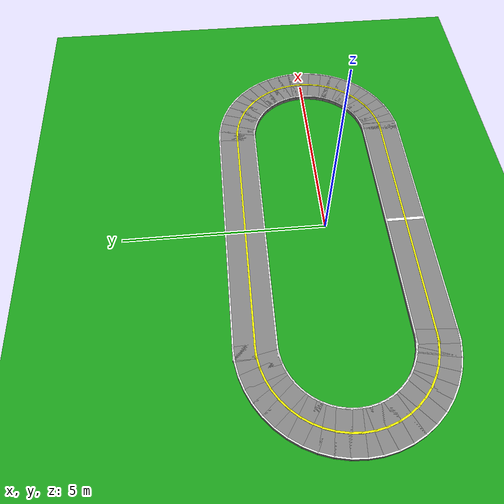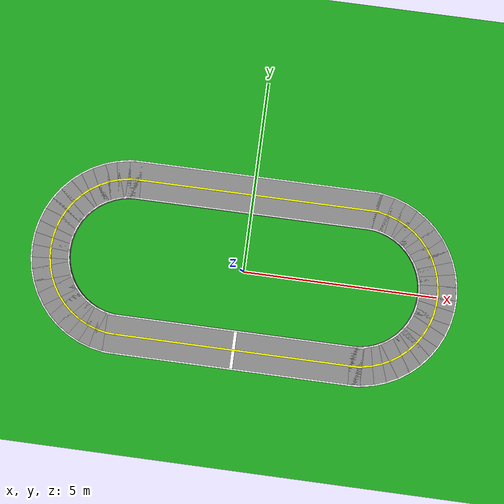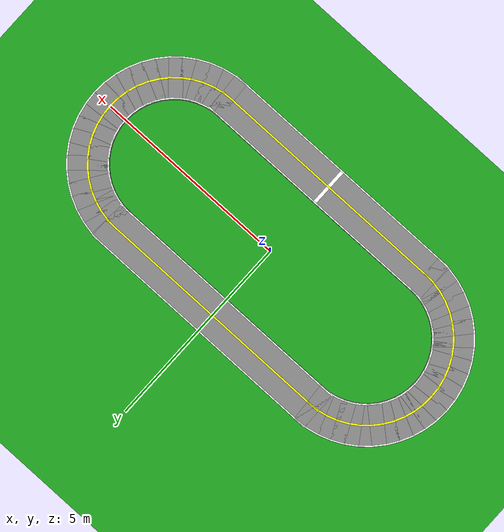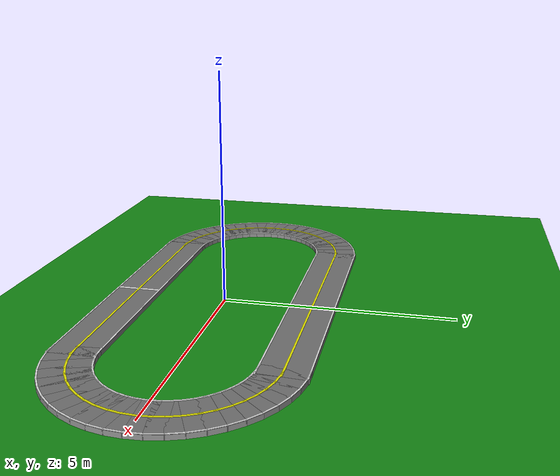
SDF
<?xml version="1.0"?>
<sdf version="1.8">
  <world name="track_world">
    <physics type="ode">
      <real_time_update_rate>1000.0</real_time_update_rate>
      <max_step_size>0.001</max_step_size>
      <real_time_factor>1</real_time_factor>
      <ode>
        <solver>
          <type>quick</type>
          <iters>150</iters>
          <precon_iters>0</precon_iters>
          <sor>1.400000</sor>
          <use_dynamic_moi_rescaling>1</use_dynamic_moi_rescaling>
        </solver>
        <constraints>
          <cfm>0.00001</cfm>
          <erp>0.2</erp>
          <contact_max_correcting_vel>2000.000000</contact_max_correcting_vel>
          <contact_surface_layer>0.01000</contact_surface_layer>
        </constraints>
      </ode>
    </physics>

    <plugin filename="gz-sim-physics-system" name="gz::sim::systems::Physics"/>
    <plugin filename="gz-sim-user-commands-system" name="gz::sim::systems::UserCommands"/>
    <plugin filename="gz-sim-scene-broadcaster-system" name="gz::sim::systems::SceneBroadcaster"/>
    <plugin filename="gz-sim-sensors-system" name="gz::sim::systems::Sensors">
      <render_engine>ogre2</render_engine>
    </plugin>
    <plugin filename="gz-sim-imu-system" name="gz::sim::systems::Imu"/>

    <!-- Sun -->
    <include>
      <uri>https://fuel.gazebosim.org/1.0/OpenRobotics/models/Sun</uri>
    </include>

    <!-- Green grass ground (replaces Ground Plane) -->
    <model name="grass_ground">
      <static>true</static>
      <link name="ground">
        <collision name="ground_collision">
          <geometry>
            <plane>
              <normal>0 0 1</normal>
              <size>100 100</size>
            </plane>
          </geometry>
        </collision>
        <visual name="ground_visual">
          <geometry>
            <plane>
              <normal>0 0 1</normal>
              <size>100 100</size>
            </plane>
          </geometry>
          <material>
            <ambient>0.1 0.5 0.1 1</ambient>
            <diffuse>0.1 0.6 0.1 1</diffuse>
            <specular>0.01 0.01 0.01 1</specular>
          </material>
        </visual>
      </link>
    </model>

    <!-- Oval race track -->
    <include>
      <uri>model://oval_track</uri>
      <pose>0 0 0 0 0 0</pose>
    </include>
  </world>
</sdf>

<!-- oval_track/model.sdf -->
<sdf version="1.8">
  <model name="oval_track">
    <static>true</static>
    <link name="track_surface">
      <collision name="straight_bottom_c"><pose>0 -2.0 0.05 0 0 0</pose><geometry><box><size>6.6 1.0 0.1</size></box></geometry></collision>
      <visual name="straight_bottom_v"><pose>0 -2.0 0.05 0 0 0</pose><geometry><box><size>6.6 1.0 0.1</size></box></geometry>
        <material><ambient>0.5 0.5 0.5 1</ambient><diffuse>0.5 0.5 0.5 1</diffuse></material>
      </visual>
      <collision name="straight_top_c"><pose>0 2.0 0.05 0 0 0</pose><geometry><box><size>6.6 1.0 0.1</size></box></geometry></collision>
      <visual name="straight_top_v"><pose>0 2.0 0.05 0 0 0</pose><geometry><box><size>6.6 1.0 0.1</size></box></geometry>
        <material><ambient>0.5 0.5 0.5 1</ambient><diffuse>0.5 0.5 0.5 1</diffuse></material>
      </visual>
      <collision name="c_r00_c"><pose>3.1308 -1.9957 0.05 0 0 0.0654</pose><geometry><box><size>0.3416 1.0 0.1</size></box></geometry></collision>
      <visual name="c_r00_v"><pose>3.1308 -1.9957 0.05 0 0 0.0654</pose><geometry><box><size>0.3416 1.0 0.1</size></box></geometry>
        <material><ambient>0.5 0.5 0.5 1</ambient><diffuse>0.5 0.5 0.5 1</diffuse></material>
      </visual>
      <collision name="c_r01_c"><pose>3.3902 -1.9616 0.05 0 0 0.1963</pose><geometry><box><size>0.3416 1.0 0.1</size></box></geometry></collision>
      <visual name="c_r01_v"><pose>3.3902 -1.9616 0.05 0 0 0.1963</pose><geometry><box><size>0.3416 1.0 0.1</size></box></geometry>
        <material><ambient>0.5 0.5 0.5 1</ambient><diffuse>0.5 0.5 0.5 1</diffuse></material>
      </visual>
      <collision name="c_r02_c"><pose>3.6429 -1.8939 0.05 0 0 0.3272</pose><geometry><box><size>0.3416 1.0 0.1</size></box></geometry></collision>
      <visual name="c_r02_v"><pose>3.6429 -1.8939 0.05 0 0 0.3272</pose><geometry><box><size>0.3416 1.0 0.1</size></box></geometry>
        <material><ambient>0.5 0.5 0.5 1</ambient><diffuse>0.5 0.5 0.5 1</diffuse></material>
      </visual>
      <collision name="c_r03_c"><pose>3.8846 -1.7937 0.05 0 0 0.4581</pose><geometry><box><size>0.3416 1.0 0.1</size></box></geometry></collision>
      <visual name="c_r03_v"><pose>3.8846 -1.7937 0.05 0 0 0.4581</pose><geometry><box><size>0.3416 1.0 0.1</size></box></geometry>
        <material><ambient>0.5 0.5 0.5 1</ambient><diffuse>0.5 0.5 0.5 1</diffuse></material>
      </visual>
      <collision name="c_r04_c"><pose>4.1111 -1.6629 0.05 0 0 0.5890</pose><geometry><box><size>0.3416 1.0 0.1</size></box></geometry></collision>
      <visual name="c_r04_v"><pose>4.1111 -1.6629 0.05 0 0 0.5890</pose><geometry><box><size>0.3416 1.0 0.1</size></box></geometry>
        <material><ambient>0.5 0.5 0.5 1</ambient><diffuse>0.5 0.5 0.5 1</diffuse></material>
      </visual>
      <collision name="c_r05_c"><pose>4.3187 -1.5037 0.05 0 0 0.7199</pose><geometry><box><size>0.3416 1.0 0.1</size></box></geometry></collision>
      <visual name="c_r05_v"><pose>4.3187 -1.5037 0.05 0 0 0.7199</pose><geometry><box><size>0.3416 1.0 0.1</size></box></geometry>
        <material><ambient>0.5 0.5 0.5 1</ambient><diffuse>0.5 0.5 0.5 1</diffuse></material>
      </visual>
      <collision name="c_r06_c"><pose>4.5037 -1.3187 0.05 0 0 0.8508</pose><geometry><box><size>0.3416 1.0 0.1</size></box></geometry></collision>
      <visual name="c_r06_v"><pose>4.5037 -1.3187 0.05 0 0 0.8508</pose><geometry><box><size>0.3416 1.0 0.1</size></box></geometry>
        <material><ambient>0.5 0.5 0.5 1</ambient><diffuse>0.5 0.5 0.5 1</diffuse></material>
      </visual>
      <collision name="c_r07_c"><pose>4.6629 -1.1111 0.05 0 0 0.9817</pose><geometry><box><size>0.3416 1.0 0.1</size></box></geometry></collision>
      <visual name="c_r07_v"><pose>4.6629 -1.1111 0.05 0 0 0.9817</pose><geometry><box><size>0.3416 1.0 0.1</size></box></geometry>
        <material><ambient>0.5 0.5 0.5 1</ambient><diffuse>0.5 0.5 0.5 1</diffuse></material>
      </visual>
      <collision name="c_r08_c"><pose>4.7937 -0.8846 0.05 0 0 1.1126</pose><geometry><box><size>0.3416 1.0 0.1</size></box></geometry></collision>
      <visual name="c_r08_v"><pose>4.7937 -0.8846 0.05 0 0 1.1126</pose><geometry><box><size>0.3416 1.0 0.1</size></box></geometry>
        <material><ambient>0.5 0.5 0.5 1</ambient><diffuse>0.5 0.5 0.5 1</diffuse></material>
      </visual>
      <collision name="c_r09_c"><pose>4.8939 -0.6429 0.05 0 0 1.2435</pose><geometry><box><size>0.3416 1.0 0.1</size></box></geometry></collision>
      <visual name="c_r09_v"><pose>4.8939 -0.6429 0.05 0 0 1.2435</pose><geometry><box><size>0.3416 1.0 0.1</size></box></geometry>
        <material><ambient>0.5 0.5 0.5 1</ambient><diffuse>0.5 0.5 0.5 1</diffuse></material>
      </visual>
      <collision name="c_r10_c"><pose>4.9616 -0.3902 0.05 0 0 1.3744</pose><geometry><box><size>0.3416 1.0 0.1</size></box></geometry></collision>
      <visual name="c_r10_v"><pose>4.9616 -0.3902 0.05 0 0 1.3744</pose><geometry><box><size>0.3416 1.0 0.1</size></box></geometry>
        <material><ambient>0.5 0.5 0.5 1</ambient><diffuse>0.5 0.5 0.5 1</diffuse></material>
      </visual>
      <collision name="c_r11_c"><pose>4.9957 -0.1308 0.05 0 0 1.5053</pose><geometry><box><size>0.3416 1.0 0.1</size></box></geometry></collision>
      <visual name="c_r11_v"><pose>4.9957 -0.1308 0.05 0 0 1.5053</pose><geometry><box><size>0.3416 1.0 0.1</size></box></geometry>
        <material><ambient>0.5 0.5 0.5 1</ambient><diffuse>0.5 0.5 0.5 1</diffuse></material>
      </visual>
      <collision name="c_r12_c"><pose>4.9957 0.1308 0.05 0 0 1.6362</pose><geometry><box><size>0.3416 1.0 0.1</size></box></geometry></collision>
      <visual name="c_r12_v"><pose>4.9957 0.1308 0.05 0 0 1.6362</pose><geometry><box><size>0.3416 1.0 0.1</size></box></geometry>
        <material><ambient>0.5 0.5 0.5 1</ambient><diffuse>0.5 0.5 0.5 1</diffuse></material>
      </visual>
      <collision name="c_r13_c"><pose>4.9616 0.3902 0.05 0 0 1.7671</pose><geometry><box><size>0.3416 1.0 0.1</size></box></geometry></collision>
      <visual name="c_r13_v"><pose>4.9616 0.3902 0.05 0 0 1.7671</pose><geometry><box><size>0.3416 1.0 0.1</size></box></geometry>
        <material><ambient>0.5 0.5 0.5 1</ambient><diffuse>0.5 0.5 0.5 1</diffuse></material>
      </visual>
      <collision name="c_r14_c"><pose>4.8939 0.6429 0.05 0 0 1.8980</pose><geometry><box><size>0.3416 1.0 0.1</size></box></geometry></collision>
      <visual name="c_r14_v"><pose>4.8939 0.6429 0.05 0 0 1.8980</pose><geometry><box><size>0.3416 1.0 0.1</size></box></geometry>
        <material><ambient>0.5 0.5 0.5 1</ambient><diffuse>0.5 0.5 0.5 1</diffuse></material>
      </visual>
      <collision name="c_r15_c"><pose>4.7937 0.8846 0.05 0 0 2.0289</pose><geometry><box><size>0.3416 1.0 0.1</size></box></geometry></collision>
      <visual name="c_r15_v"><pose>4.7937 0.8846 0.05 0 0 2.0289</pose><geometry><box><size>0.3416 1.0 0.1</size></box></geometry>
        <material><ambient>0.5 0.5 0.5 1</ambient><diffuse>0.5 0.5 0.5 1</diffuse></material>
      </visual>
      <collision name="c_r16_c"><pose>4.6629 1.1111 0.05 0 0 2.1598</pose><geometry><box><size>0.3416 1.0 0.1</size></box></geometry></collision>
      <visual name="c_r16_v"><pose>4.6629 1.1111 0.05 0 0 2.1598</pose><geometry><box><size>0.3416 1.0 0.1</size></box></geometry>
        <material><ambient>0.5 0.5 0.5 1</ambient><diffuse>0.5 0.5 0.5 1</diffuse></material>
      </visual>
      <collision name="c_r17_c"><pose>4.5037 1.3187 0.05 0 0 2.2907</pose><geometry><box><size>0.3416 1.0 0.1</size></box></geometry></collision>
      <visual name="c_r17_v"><pose>4.5037 1.3187 0.05 0 0 2.2907</pose><geometry><box><size>0.3416 1.0 0.1</size></box></geometry>
        <material><ambient>0.5 0.5 0.5 1</ambient><diffuse>0.5 0.5 0.5 1</diffuse></material>
      </visual>
      <collision name="c_r18_c"><pose>4.3187 1.5037 0.05 0 0 2.4216</pose><geometry><box><size>0.3416 1.0 0.1</size></box></geometry></collision>
      <visual name="c_r18_v"><pose>4.3187 1.5037 0.05 0 0 2.4216</pose><geometry><box><size>0.3416 1.0 0.1</size></box></geometry>
        <material><ambient>0.5 0.5 0.5 1</ambient><diffuse>0.5 0.5 0.5 1</diffuse></material>
      </visual>
      <collision name="c_r19_c"><pose>4.1111 1.6629 0.05 0 0 2.5525</pose><geometry><box><size>0.3416 1.0 0.1</size></box></geometry></collision>
      <visual name="c_r19_v"><pose>4.1111 1.6629 0.05 0 0 2.5525</pose><geometry><box><size>0.3416 1.0 0.1</size></box></geometry>
        <material><ambient>0.5 0.5 0.5 1</ambient><diffuse>0.5 0.5 0.5 1</diffuse></material>
      </visual>
      <collision name="c_r20_c"><pose>3.8846 1.7937 0.05 0 0 2.6834</pose><geometry><box><size>0.3416 1.0 0.1</size></box></geometry></collision>
      <visual name="c_r20_v"><pose>3.8846 1.7937 0.05 0 0 2.6834</pose><geometry><box><size>0.3416 1.0 0.1</size></box></geometry>
        <material><ambient>0.5 0.5 0.5 1</ambient><diffuse>0.5 0.5 0.5 1</diffuse></material>
      </visual>
      <collision name="c_r21_c"><pose>3.6429 1.8939 0.05 0 0 2.8143</pose><geometry><box><size>0.3416 1.0 0.1</size></box></geometry></collision>
      <visual name="c_r21_v"><pose>3.6429 1.8939 0.05 0 0 2.8143</pose><geometry><box><size>0.3416 1.0 0.1</size></box></geometry>
        <material><ambient>0.5 0.5 0.5 1</ambient><diffuse>0.5 0.5 0.5 1</diffuse></material>
      </visual>
      <collision name="c_r22_c"><pose>3.3902 1.9616 0.05 0 0 2.9452</pose><geometry><box><size>0.3416 1.0 0.1</size></box></geometry></collision>
      <visual name="c_r22_v"><pose>3.3902 1.9616 0.05 0 0 2.9452</pose><geometry><box><size>0.3416 1.0 0.1</size></box></geometry>
        <material><ambient>0.5 0.5 0.5 1</ambient><diffuse>0.5 0.5 0.5 1</diffuse></material>
      </visual>
      <collision name="c_r23_c"><pose>3.1308 1.9957 0.05 0 0 3.0761</pose><geometry><box><size>0.3416 1.0 0.1</size></box></geometry></collision>
      <visual name="c_r23_v"><pose>3.1308 1.9957 0.05 0 0 3.0761</pose><geometry><box><size>0.3416 1.0 0.1</size></box></geometry>
        <material><ambient>0.5 0.5 0.5 1</ambient><diffuse>0.5 0.5 0.5 1</diffuse></material>
      </visual>
      <collision name="c_l00_c"><pose>-3.1308 1.9957 0.05 0 0 3.2070</pose><geometry><box><size>0.3416 1.0 0.1</size></box></geometry></collision>
      <visual name="c_l00_v"><pose>-3.1308 1.9957 0.05 0 0 3.2070</pose><geometry><box><size>0.3416 1.0 0.1</size></box></geometry>
        <material><ambient>0.5 0.5 0.5 1</ambient><diffuse>0.5 0.5 0.5 1</diffuse></material>
      </visual>
      <collision name="c_l01_c"><pose>-3.3902 1.9616 0.05 0 0 3.3379</pose><geometry><box><size>0.3416 1.0 0.1</size></box></geometry></collision>
      <visual name="c_l01_v"><pose>-3.3902 1.9616 0.05 0 0 3.3379</pose><geometry><box><size>0.3416 1.0 0.1</size></box></geometry>
        <material><ambient>0.5 0.5 0.5 1</ambient><diffuse>0.5 0.5 0.5 1</diffuse></material>
      </visual>
      <collision name="c_l02_c"><pose>-3.6429 1.8939 0.05 0 0 3.4688</pose><geometry><box><size>0.3416 1.0 0.1</size></box></geometry></collision>
      <visual name="c_l02_v"><pose>-3.6429 1.8939 0.05 0 0 3.4688</pose><geometry><box><size>0.3416 1.0 0.1</size></box></geometry>
        <material><ambient>0.5 0.5 0.5 1</ambient><diffuse>0.5 0.5 0.5 1</diffuse></material>
      </visual>
      <collision name="c_l03_c"><pose>-3.8846 1.7937 0.05 0 0 3.5997</pose><geometry><box><size>0.3416 1.0 0.1</size></box></geometry></collision>
      <visual name="c_l03_v"><pose>-3.8846 1.7937 0.05 0 0 3.5997</pose><geometry><box><size>0.3416 1.0 0.1</size></box></geometry>
        <material><ambient>0.5 0.5 0.5 1</ambient><diffuse>0.5 0.5 0.5 1</diffuse></material>
      </visual>
      <collision name="c_l04_c"><pose>-4.1111 1.6629 0.05 0 0 3.7306</pose><geometry><box><size>0.3416 1.0 0.1</size></box></geometry></collision>
      <visual name="c_l04_v"><pose>-4.1111 1.6629 0.05 0 0 3.7306</pose><geometry><box><size>0.3416 1.0 0.1</size></box></geometry>
        <material><ambient>0.5 0.5 0.5 1</ambient><diffuse>0.5 0.5 0.5 1</diffuse></material>
      </visual>
      <collision name="c_l05_c"><pose>-4.3187 1.5037 0.05 0 0 3.8615</pose><geometry><box><size>0.3416 1.0 0.1</size></box></geometry></collision>
      <visual name="c_l05_v"><pose>-4.3187 1.5037 0.05 0 0 3.8615</pose><geometry><box><size>0.3416 1.0 0.1</size></box></geometry>
        <material><ambient>0.5 0.5 0.5 1</ambient><diffuse>0.5 0.5 0.5 1</diffuse></material>
      </visual>
      <collision name="c_l06_c"><pose>-4.5037 1.3187 0.05 0 0 3.9924</pose><geometry><box><size>0.3416 1.0 0.1</size></box></geometry></collision>
      <visual name="c_l06_v"><pose>-4.5037 1.3187 0.05 0 0 3.9924</pose><geometry><box><size>0.3416 1.0 0.1</size></box></geometry>
        <material><ambient>0.5 0.5 0.5 1</ambient><diffuse>0.5 0.5 0.5 1</diffuse></material>
      </visual>
      <collision name="c_l07_c"><pose>-4.6629 1.1111 0.05 0 0 4.1233</pose><geometry><box><size>0.3416 1.0 0.1</size></box></geometry></collision>
      <visual name="c_l07_v"><pose>-4.6629 1.1111 0.05 0 0 4.1233</pose><geometry><box><size>0.3416 1.0 0.1</size></box></geometry>
        <material><ambient>0.5 0.5 0.5 1</ambient><diffuse>0.5 0.5 0.5 1</diffuse></material>
      </visual>
      <collision name="c_l08_c"><pose>-4.7937 0.8846 0.05 0 0 4.2542</pose><geometry><box><size>0.3416 1.0 0.1</size></box></geometry></collision>
      <visual name="c_l08_v"><pose>-4.7937 0.8846 0.05 0 0 4.2542</pose><geometry><box><size>0.3416 1.0 0.1</size></box></geometry>
        <material><ambient>0.5 0.5 0.5 1</ambient><diffuse>0.5 0.5 0.5 1</diffuse></material>
      </visual>
      <collision name="c_l09_c"><pose>-4.8939 0.6429 0.05 0 0 4.3851</pose><geometry><box><size>0.3416 1.0 0.1</size></box></geometry></collision>
      <visual name="c_l09_v"><pose>-4.8939 0.6429 0.05 0 0 4.3851</pose><geometry><box><size>0.3416 1.0 0.1</size></box></geometry>
        <material><ambient>0.5 0.5 0.5 1</ambient><diffuse>0.5 0.5 0.5 1</diffuse></material>
      </visual>
      <collision name="c_l10_c"><pose>-4.9616 0.3902 0.05 0 0 4.5160</pose><geometry><box><size>0.3416 1.0 0.1</size></box></geometry></collision>
      <visual name="c_l10_v"><pose>-4.9616 0.3902 0.05 0 0 4.5160</pose><geometry><box><size>0.3416 1.0 0.1</size></box></geometry>
        <material><ambient>0.5 0.5 0.5 1</ambient><diffuse>0.5 0.5 0.5 1</diffuse></material>
      </visual>
      <collision name="c_l11_c"><pose>-4.9957 0.1308 0.05 0 0 4.6469</pose><geometry><box><size>0.3416 1.0 0.1</size></box></geometry></collision>
      <visual name="c_l11_v"><pose>-4.9957 0.1308 0.05 0 0 4.6469</pose><geometry><box><size>0.3416 1.0 0.1</size></box></geometry>
        <material><ambient>0.5 0.5 0.5 1</ambient><diffuse>0.5 0.5 0.5 1</diffuse></material>
      </visual>
      <collision name="c_l12_c"><pose>-4.9957 -0.1308 0.05 0 0 4.7778</pose><geometry><box><size>0.3416 1.0 0.1</size></box></geometry></collision>
      <visual name="c_l12_v"><pose>-4.9957 -0.1308 0.05 0 0 4.7778</pose><geometry><box><size>0.3416 1.0 0.1</size></box></geometry>
        <material><ambient>0.5 0.5 0.5 1</ambient><diffuse>0.5 0.5 0.5 1</diffuse></material>
      </visual>
      <collision name="c_l13_c"><pose>-4.9616 -0.3902 0.05 0 0 4.9087</pose><geometry><box><size>0.3416 1.0 0.1</size></box></geometry></collision>
      <visual name="c_l13_v"><pose>-4.9616 -0.3902 0.05 0 0 4.9087</pose><geometry><box><size>0.3416 1.0 0.1</size></box></geometry>
        <material><ambient>0.5 0.5 0.5 1</ambient><diffuse>0.5 0.5 0.5 1</diffuse></material>
      </visual>
      <collision name="c_l14_c"><pose>-4.8939 -0.6429 0.05 0 0 5.0396</pose><geometry><box><size>0.3416 1.0 0.1</size></box></geometry></collision>
      <visual name="c_l14_v"><pose>-4.8939 -0.6429 0.05 0 0 5.0396</pose><geometry><box><size>0.3416 1.0 0.1</size></box></geometry>
        <material><ambient>0.5 0.5 0.5 1</ambient><diffuse>0.5 0.5 0.5 1</diffuse></material>
      </visual>
      <collision name="c_l15_c"><pose>-4.7937 -0.8846 0.05 0 0 5.1705</pose><geometry><box><size>0.3416 1.0 0.1</size></box></geometry></collision>
      <visual name="c_l15_v"><pose>-4.7937 -0.8846 0.05 0 0 5.1705</pose><geometry><box><size>0.3416 1.0 0.1</size></box></geometry>
        <material><ambient>0.5 0.5 0.5 1</ambient><diffuse>0.5 0.5 0.5 1</diffuse></material>
      </visual>
      <collision name="c_l16_c"><pose>-4.6629 -1.1111 0.05 0 0 5.3014</pose><geometry><box><size>0.3416 1.0 0.1</size></box></geometry></collision>
      <visual name="c_l16_v"><pose>-4.6629 -1.1111 0.05 0 0 5.3014</pose><geometry><box><size>0.3416 1.0 0.1</size></box></geometry>
        <material><ambient>0.5 0.5 0.5 1</ambient><diffuse>0.5 0.5 0.5 1</diffuse></material>
      </visual>
      <collision name="c_l17_c"><pose>-4.5037 -1.3187 0.05 0 0 5.4323</pose><geometry><box><size>0.3416 1.0 0.1</size></box></geometry></collision>
      <visual name="c_l17_v"><pose>-4.5037 -1.3187 0.05 0 0 5.4323</pose><geometry><box><size>0.3416 1.0 0.1</size></box></geometry>
        <material><ambient>0.5 0.5 0.5 1</ambient><diffuse>0.5 0.5 0.5 1</diffuse></material>
      </visual>
      <collision name="c_l18_c"><pose>-4.3187 -1.5037 0.05 0 0 5.5632</pose><geometry><box><size>0.3416 1.0 0.1</size></box></geometry></collision>
      <visual name="c_l18_v"><pose>-4.3187 -1.5037 0.05 0 0 5.5632</pose><geometry><box><size>0.3416 1.0 0.1</size></box></geometry>
        <material><ambient>0.5 0.5 0.5 1</ambient><diffuse>0.5 0.5 0.5 1</diffuse></material>
      </visual>
      <collision name="c_l19_c"><pose>-4.1111 -1.6629 0.05 0 0 5.6941</pose><geometry><box><size>0.3416 1.0 0.1</size></box></geometry></collision>
      <visual name="c_l19_v"><pose>-4.1111 -1.6629 0.05 0 0 5.6941</pose><geometry><box><size>0.3416 1.0 0.1</size></box></geometry>
        <material><ambient>0.5 0.5 0.5 1</ambient><diffuse>0.5 0.5 0.5 1</diffuse></material>
      </visual>
      <collision name="c_l20_c"><pose>-3.8846 -1.7937 0.05 0 0 5.8250</pose><geometry><box><size>0.3416 1.0 0.1</size></box></geometry></collision>
      <visual name="c_l20_v"><pose>-3.8846 -1.7937 0.05 0 0 5.8250</pose><geometry><box><size>0.3416 1.0 0.1</size></box></geometry>
        <material><ambient>0.5 0.5 0.5 1</ambient><diffuse>0.5 0.5 0.5 1</diffuse></material>
      </visual>
      <collision name="c_l21_c"><pose>-3.6429 -1.8939 0.05 0 0 5.9559</pose><geometry><box><size>0.3416 1.0 0.1</size></box></geometry></collision>
      <visual name="c_l21_v"><pose>-3.6429 -1.8939 0.05 0 0 5.9559</pose><geometry><box><size>0.3416 1.0 0.1</size></box></geometry>
        <material><ambient>0.5 0.5 0.5 1</ambient><diffuse>0.5 0.5 0.5 1</diffuse></material>
      </visual>
      <collision name="c_l22_c"><pose>-3.3902 -1.9616 0.05 0 0 6.0868</pose><geometry><box><size>0.3416 1.0 0.1</size></box></geometry></collision>
      <visual name="c_l22_v"><pose>-3.3902 -1.9616 0.05 0 0 6.0868</pose><geometry><box><size>0.3416 1.0 0.1</size></box></geometry>
        <material><ambient>0.5 0.5 0.5 1</ambient><diffuse>0.5 0.5 0.5 1</diffuse></material>
      </visual>
      <collision name="c_l23_c"><pose>-3.1308 -1.9957 0.05 0 0 6.2177</pose><geometry><box><size>0.3416 1.0 0.1</size></box></geometry></collision>
      <visual name="c_l23_v"><pose>-3.1308 -1.9957 0.05 0 0 6.2177</pose><geometry><box><size>0.3416 1.0 0.1</size></box></geometry>
        <material><ambient>0.5 0.5 0.5 1</ambient><diffuse>0.5 0.5 0.5 1</diffuse></material>
      </visual>
    </link>
    <link name="lane_markings">
      <visual name="center_bottom"><pose>0 -2.0 0.105 0 0 0</pose><geometry><box><size>6.6 0.04 0.01</size></box></geometry>
        <material><ambient>1 1 0 1</ambient><diffuse>1 1 0 1</diffuse></material>
      </visual>
      <visual name="center_top"><pose>0 2.0 0.105 0 0 0</pose><geometry><box><size>6.6 0.04 0.01</size></box></geometry>
        <material><ambient>1 1 0 1</ambient><diffuse>1 1 0 1</diffuse></material>
      </visual>
      <visual name="edge_bl"><pose>0 -2.48 0.105 0 0 0</pose><geometry><box><size>6.6 0.03 0.01</size></box></geometry>
        <material><ambient>1 1 1 1</ambient><diffuse>1 1 1 1</diffuse></material>
      </visual>
      <visual name="edge_br"><pose>0 -1.52 0.105 0 0 0</pose><geometry><box><size>6.6 0.03 0.01</size></box></geometry>
        <material><ambient>1 1 1 1</ambient><diffuse>1 1 1 1</diffuse></material>
      </visual>
      <visual name="edge_tl"><pose>0 1.52 0.105 0 0 0</pose><geometry><box><size>6.6 0.03 0.01</size></box></geometry>
        <material><ambient>1 1 1 1</ambient><diffuse>1 1 1 1</diffuse></material>
      </visual>
      <visual name="edge_tr"><pose>0 2.48 0.105 0 0 0</pose><geometry><box><size>6.6 0.03 0.01</size></box></geometry>
        <material><ambient>1 1 1 1</ambient><diffuse>1 1 1 1</diffuse></material>
      </visual>
      <!-- Start line -->
      <visual name="start_line"><pose>0 -2.0 0.1005 0 0 0</pose><geometry><box><size>0.08 1.0 0.001</size></box></geometry>
        <material><ambient>1 1 1 1</ambient><diffuse>1 1 1 1</diffuse></material>
      </visual>
      <visual name="ctr_r00"><pose>3.1308 -1.9957 0.105 0 0 0.0654</pose><geometry><box><size>0.3416 0.04 0.01</size></box></geometry>
        <material><ambient>1 1 0 1</ambient><diffuse>1 1 0 1</diffuse></material>
      </visual>
      <visual name="ei_r00"><pose>3.0994 -1.5167 0.105 0 0 0.0654</pose><geometry><box><size>0.3416 0.03 0.01</size></box></geometry>
        <material><ambient>1 1 1 1</ambient><diffuse>1 1 1 1</diffuse></material>
      </visual>
      <visual name="eo_r00"><pose>3.1622 -2.4747 0.105 0 0 0.0654</pose><geometry><box><size>0.3416 0.03 0.01</size></box></geometry>
        <material><ambient>1 1 1 1</ambient><diffuse>1 1 1 1</diffuse></material>
      </visual>
      <visual name="ctr_r01"><pose>3.3902 -1.9616 0.105 0 0 0.1963</pose><geometry><box><size>0.3416 0.04 0.01</size></box></geometry>
        <material><ambient>1 1 0 1</ambient><diffuse>1 1 0 1</diffuse></material>
      </visual>
      <visual name="ei_r01"><pose>3.2965 -1.4908 0.105 0 0 0.1963</pose><geometry><box><size>0.3416 0.03 0.01</size></box></geometry>
        <material><ambient>1 1 1 1</ambient><diffuse>1 1 1 1</diffuse></material>
      </visual>
      <visual name="eo_r01"><pose>3.4838 -2.4323 0.105 0 0 0.1963</pose><geometry><box><size>0.3416 0.03 0.01</size></box></geometry>
        <material><ambient>1 1 1 1</ambient><diffuse>1 1 1 1</diffuse></material>
      </visual>
      <visual name="ctr_r02"><pose>3.6429 -1.8939 0.105 0 0 0.3272</pose><geometry><box><size>0.3416 0.04 0.01</size></box></geometry>
        <material><ambient>1 1 0 1</ambient><diffuse>1 1 0 1</diffuse></material>
      </visual>
      <visual name="ei_r02"><pose>3.4886 -1.4393 0.105 0 0 0.3272</pose><geometry><box><size>0.3416 0.03 0.01</size></box></geometry>
        <material><ambient>1 1 1 1</ambient><diffuse>1 1 1 1</diffuse></material>
      </visual>
      <visual name="eo_r02"><pose>3.7972 -2.3484 0.105 0 0 0.3272</pose><geometry><box><size>0.3416 0.03 0.01</size></box></geometry>
        <material><ambient>1 1 1 1</ambient><diffuse>1 1 1 1</diffuse></material>
      </visual>
      <visual name="ctr_r03"><pose>3.8846 -1.7937 0.105 0 0 0.4581</pose><geometry><box><size>0.3416 0.04 0.01</size></box></geometry>
        <material><ambient>1 1 0 1</ambient><diffuse>1 1 0 1</diffuse></material>
      </visual>
      <visual name="ei_r03"><pose>3.6723 -1.3632 0.105 0 0 0.4581</pose><geometry><box><size>0.3416 0.03 0.01</size></box></geometry>
        <material><ambient>1 1 1 1</ambient><diffuse>1 1 1 1</diffuse></material>
      </visual>
      <visual name="eo_r03"><pose>4.0969 -2.2242 0.105 0 0 0.4581</pose><geometry><box><size>0.3416 0.03 0.01</size></box></geometry>
        <material><ambient>1 1 1 1</ambient><diffuse>1 1 1 1</diffuse></material>
      </visual>
      <visual name="ctr_r04"><pose>4.1111 -1.6629 0.105 0 0 0.5890</pose><geometry><box><size>0.3416 0.04 0.01</size></box></geometry>
        <material><ambient>1 1 0 1</ambient><diffuse>1 1 0 1</diffuse></material>
      </visual>
      <visual name="ei_r04"><pose>3.8445 -1.2638 0.105 0 0 0.5890</pose><geometry><box><size>0.3416 0.03 0.01</size></box></geometry>
        <material><ambient>1 1 1 1</ambient><diffuse>1 1 1 1</diffuse></material>
      </visual>
      <visual name="eo_r04"><pose>4.3778 -2.0620 0.105 0 0 0.5890</pose><geometry><box><size>0.3416 0.03 0.01</size></box></geometry>
        <material><ambient>1 1 1 1</ambient><diffuse>1 1 1 1</diffuse></material>
      </visual>
      <visual name="ctr_r05"><pose>4.3187 -1.5037 0.105 0 0 0.7199</pose><geometry><box><size>0.3416 0.04 0.01</size></box></geometry>
        <material><ambient>1 1 0 1</ambient><diffuse>1 1 0 1</diffuse></material>
      </visual>
      <visual name="ei_r05"><pose>4.0022 -1.1428 0.105 0 0 0.7199</pose><geometry><box><size>0.3416 0.03 0.01</size></box></geometry>
        <material><ambient>1 1 1 1</ambient><diffuse>1 1 1 1</diffuse></material>
      </visual>
      <visual name="eo_r05"><pose>4.6352 -1.8646 0.105 0 0 0.7199</pose><geometry><box><size>0.3416 0.03 0.01</size></box></geometry>
        <material><ambient>1 1 1 1</ambient><diffuse>1 1 1 1</diffuse></material>
      </visual>
      <visual name="ctr_r06"><pose>4.5037 -1.3187 0.105 0 0 0.8508</pose><geometry><box><size>0.3416 0.04 0.01</size></box></geometry>
        <material><ambient>1 1 0 1</ambient><diffuse>1 1 0 1</diffuse></material>
      </visual>
      <visual name="ei_r06"><pose>4.1428 -1.0022 0.105 0 0 0.8508</pose><geometry><box><size>0.3416 0.03 0.01</size></box></geometry>
        <material><ambient>1 1 1 1</ambient><diffuse>1 1 1 1</diffuse></material>
      </visual>
      <visual name="eo_r06"><pose>4.8646 -1.6352 0.105 0 0 0.8508</pose><geometry><box><size>0.3416 0.03 0.01</size></box></geometry>
        <material><ambient>1 1 1 1</ambient><diffuse>1 1 1 1</diffuse></material>
      </visual>
      <visual name="ctr_r07"><pose>4.6629 -1.1111 0.105 0 0 0.9817</pose><geometry><box><size>0.3416 0.04 0.01</size></box></geometry>
        <material><ambient>1 1 0 1</ambient><diffuse>1 1 0 1</diffuse></material>
      </visual>
      <visual name="ei_r07"><pose>4.2638 -0.8445 0.105 0 0 0.9817</pose><geometry><box><size>0.3416 0.03 0.01</size></box></geometry>
        <material><ambient>1 1 1 1</ambient><diffuse>1 1 1 1</diffuse></material>
      </visual>
      <visual name="eo_r07"><pose>5.0620 -1.3778 0.105 0 0 0.9817</pose><geometry><box><size>0.3416 0.03 0.01</size></box></geometry>
        <material><ambient>1 1 1 1</ambient><diffuse>1 1 1 1</diffuse></material>
      </visual>
      <visual name="ctr_r08"><pose>4.7937 -0.8846 0.105 0 0 1.1126</pose><geometry><box><size>0.3416 0.04 0.01</size></box></geometry>
        <material><ambient>1 1 0 1</ambient><diffuse>1 1 0 1</diffuse></material>
      </visual>
      <visual name="ei_r08"><pose>4.3632 -0.6723 0.105 0 0 1.1126</pose><geometry><box><size>0.3416 0.03 0.01</size></box></geometry>
        <material><ambient>1 1 1 1</ambient><diffuse>1 1 1 1</diffuse></material>
      </visual>
      <visual name="eo_r08"><pose>5.2242 -1.0969 0.105 0 0 1.1126</pose><geometry><box><size>0.3416 0.03 0.01</size></box></geometry>
        <material><ambient>1 1 1 1</ambient><diffuse>1 1 1 1</diffuse></material>
      </visual>
      <visual name="ctr_r09"><pose>4.8939 -0.6429 0.105 0 0 1.2435</pose><geometry><box><size>0.3416 0.04 0.01</size></box></geometry>
        <material><ambient>1 1 0 1</ambient><diffuse>1 1 0 1</diffuse></material>
      </visual>
      <visual name="ei_r09"><pose>4.4393 -0.4886 0.105 0 0 1.2435</pose><geometry><box><size>0.3416 0.03 0.01</size></box></geometry>
        <material><ambient>1 1 1 1</ambient><diffuse>1 1 1 1</diffuse></material>
      </visual>
      <visual name="eo_r09"><pose>5.3484 -0.7972 0.105 0 0 1.2435</pose><geometry><box><size>0.3416 0.03 0.01</size></box></geometry>
        <material><ambient>1 1 1 1</ambient><diffuse>1 1 1 1</diffuse></material>
      </visual>
      <visual name="ctr_r10"><pose>4.9616 -0.3902 0.105 0 0 1.3744</pose><geometry><box><size>0.3416 0.04 0.01</size></box></geometry>
        <material><ambient>1 1 0 1</ambient><diffuse>1 1 0 1</diffuse></material>
      </visual>
      <visual name="ei_r10"><pose>4.4908 -0.2965 0.105 0 0 1.3744</pose><geometry><box><size>0.3416 0.03 0.01</size></box></geometry>
        <material><ambient>1 1 1 1</ambient><diffuse>1 1 1 1</diffuse></material>
      </visual>
      <visual name="eo_r10"><pose>5.4323 -0.4838 0.105 0 0 1.3744</pose><geometry><box><size>0.3416 0.03 0.01</size></box></geometry>
        <material><ambient>1 1 1 1</ambient><diffuse>1 1 1 1</diffuse></material>
      </visual>
      <visual name="ctr_r11"><pose>4.9957 -0.1308 0.105 0 0 1.5053</pose><geometry><box><size>0.3416 0.04 0.01</size></box></geometry>
        <material><ambient>1 1 0 1</ambient><diffuse>1 1 0 1</diffuse></material>
      </visual>
      <visual name="ei_r11"><pose>4.5167 -0.0994 0.105 0 0 1.5053</pose><geometry><box><size>0.3416 0.03 0.01</size></box></geometry>
        <material><ambient>1 1 1 1</ambient><diffuse>1 1 1 1</diffuse></material>
      </visual>
      <visual name="eo_r11"><pose>5.4747 -0.1622 0.105 0 0 1.5053</pose><geometry><box><size>0.3416 0.03 0.01</size></box></geometry>
        <material><ambient>1 1 1 1</ambient><diffuse>1 1 1 1</diffuse></material>
      </visual>
      <visual name="ctr_r12"><pose>4.9957 0.1308 0.105 0 0 1.6362</pose><geometry><box><size>0.3416 0.04 0.01</size></box></geometry>
        <material><ambient>1 1 0 1</ambient><diffuse>1 1 0 1</diffuse></material>
      </visual>
      <visual name="ei_r12"><pose>4.5167 0.0994 0.105 0 0 1.6362</pose><geometry><box><size>0.3416 0.03 0.01</size></box></geometry>
        <material><ambient>1 1 1 1</ambient><diffuse>1 1 1 1</diffuse></material>
      </visual>
      <visual name="eo_r12"><pose>5.4747 0.1622 0.105 0 0 1.6362</pose><geometry><box><size>0.3416 0.03 0.01</size></box></geometry>
        <material><ambient>1 1 1 1</ambient><diffuse>1 1 1 1</diffuse></material>
      </visual>
      <visual name="ctr_r13"><pose>4.9616 0.3902 0.105 0 0 1.7671</pose><geometry><box><size>0.3416 0.04 0.01</size></box></geometry>
        <material><ambient>1 1 0 1</ambient><diffuse>1 1 0 1</diffuse></material>
      </visual>
      <visual name="ei_r13"><pose>4.4908 0.2965 0.105 0 0 1.7671</pose><geometry><box><size>0.3416 0.03 0.01</size></box></geometry>
        <material><ambient>1 1 1 1</ambient><diffuse>1 1 1 1</diffuse></material>
      </visual>
      <visual name="eo_r13"><pose>5.4323 0.4838 0.105 0 0 1.7671</pose><geometry><box><size>0.3416 0.03 0.01</size></box></geometry>
        <material><ambient>1 1 1 1</ambient><diffuse>1 1 1 1</diffuse></material>
      </visual>
      <visual name="ctr_r14"><pose>4.8939 0.6429 0.105 0 0 1.8980</pose><geometry><box><size>0.3416 0.04 0.01</size></box></geometry>
        <material><ambient>1 1 0 1</ambient><diffuse>1 1 0 1</diffuse></material>
      </visual>
      <visual name="ei_r14"><pose>4.4393 0.4886 0.105 0 0 1.8980</pose><geometry><box><size>0.3416 0.03 0.01</size></box></geometry>
        <material><ambient>1 1 1 1</ambient><diffuse>1 1 1 1</diffuse></material>
      </visual>
      <visual name="eo_r14"><pose>5.3484 0.7972 0.105 0 0 1.8980</pose><geometry><box><size>0.3416 0.03 0.01</size></box></geometry>
        <material><ambient>1 1 1 1</ambient><diffuse>1 1 1 1</diffuse></material>
      </visual>
      <visual name="ctr_r15"><pose>4.7937 0.8846 0.105 0 0 2.0289</pose><geometry><box><size>0.3416 0.04 0.01</size></box></geometry>
        <material><ambient>1 1 0 1</ambient><diffuse>1 1 0 1</diffuse></material>
      </visual>
      <visual name="ei_r15"><pose>4.3632 0.6723 0.105 0 0 2.0289</pose><geometry><box><size>0.3416 0.03 0.01</size></box></geometry>
        <material><ambient>1 1 1 1</ambient><diffuse>1 1 1 1</diffuse></material>
      </visual>
      <visual name="eo_r15"><pose>5.2242 1.0969 0.105 0 0 2.0289</pose><geometry><box><size>0.3416 0.03 0.01</size></box></geometry>
        <material><ambient>1 1 1 1</ambient><diffuse>1 1 1 1</diffuse></material>
      </visual>
      <visual name="ctr_r16"><pose>4.6629 1.1111 0.105 0 0 2.1598</pose><geometry><box><size>0.3416 0.04 0.01</size></box></geometry>
        <material><ambient>1 1 0 1</ambient><diffuse>1 1 0 1</diffuse></material>
      </visual>
      <visual name="ei_r16"><pose>4.2638 0.8445 0.105 0 0 2.1598</pose><geometry><box><size>0.3416 0.03 0.01</size></box></geometry>
        <material><ambient>1 1 1 1</ambient><diffuse>1 1 1 1</diffuse></material>
      </visual>
      <visual name="eo_r16"><pose>5.0620 1.3778 0.105 0 0 2.1598</pose><geometry><box><size>0.3416 0.03 0.01</size></box></geometry>
        <material><ambient>1 1 1 1</ambient><diffuse>1 1 1 1</diffuse></material>
      </visual>
      <visual name="ctr_r17"><pose>4.5037 1.3187 0.105 0 0 2.2907</pose><geometry><box><size>0.3416 0.04 0.01</size></box></geometry>
        <material><ambient>1 1 0 1</ambient><diffuse>1 1 0 1</diffuse></material>
      </visual>
      <visual name="ei_r17"><pose>4.1428 1.0022 0.105 0 0 2.2907</pose><geometry><box><size>0.3416 0.03 0.01</size></box></geometry>
        <material><ambient>1 1 1 1</ambient><diffuse>1 1 1 1</diffuse></material>
      </visual>
      <visual name="eo_r17"><pose>4.8646 1.6352 0.105 0 0 2.2907</pose><geometry><box><size>0.3416 0.03 0.01</size></box></geometry>
        <material><ambient>1 1 1 1</ambient><diffuse>1 1 1 1</diffuse></material>
      </visual>
      <visual name="ctr_r18"><pose>4.3187 1.5037 0.105 0 0 2.4216</pose><geometry><box><size>0.3416 0.04 0.01</size></box></geometry>
        <material><ambient>1 1 0 1</ambient><diffuse>1 1 0 1</diffuse></material>
      </visual>
      <visual name="ei_r18"><pose>4.0022 1.1428 0.105 0 0 2.4216</pose><geometry><box><size>0.3416 0.03 0.01</size></box></geometry>
        <material><ambient>1 1 1 1</ambient><diffuse>1 1 1 1</diffuse></material>
      </visual>
      <visual name="eo_r18"><pose>4.6352 1.8646 0.105 0 0 2.4216</pose><geometry><box><size>0.3416 0.03 0.01</size></box></geometry>
        <material><ambient>1 1 1 1</ambient><diffuse>1 1 1 1</diffuse></material>
      </visual>
      <visual name="ctr_r19"><pose>4.1111 1.6629 0.105 0 0 2.5525</pose><geometry><box><size>0.3416 0.04 0.01</size></box></geometry>
        <material><ambient>1 1 0 1</ambient><diffuse>1 1 0 1</diffuse></material>
      </visual>
      <visual name="ei_r19"><pose>3.8445 1.2638 0.105 0 0 2.5525</pose><geometry><box><size>0.3416 0.03 0.01</size></box></geometry>
        <material><ambient>1 1 1 1</ambient><diffuse>1 1 1 1</diffuse></material>
      </visual>
      <visual name="eo_r19"><pose>4.3778 2.0620 0.105 0 0 2.5525</pose><geometry><box><size>0.3416 0.03 0.01</size></box></geometry>
        <material><ambient>1 1 1 1</ambient><diffuse>1 1 1 1</diffuse></material>
      </visual>
      <visual name="ctr_r20"><pose>3.8846 1.7937 0.105 0 0 2.6834</pose><geometry><box><size>0.3416 0.04 0.01</size></box></geometry>
        <material><ambient>1 1 0 1</ambient><diffuse>1 1 0 1</diffuse></material>
      </visual>
      <visual name="ei_r20"><pose>3.6723 1.3632 0.105 0 0 2.6834</pose><geometry><box><size>0.3416 0.03 0.01</size></box></geometry>
        <material><ambient>1 1 1 1</ambient><diffuse>1 1 1 1</diffuse></material>
      </visual>
      <visual name="eo_r20"><pose>4.0969 2.2242 0.105 0 0 2.6834</pose><geometry><box><size>0.3416 0.03 0.01</size></box></geometry>
        <material><ambient>1 1 1 1</ambient><diffuse>1 1 1 1</diffuse></material>
      </visual>
      <visual name="ctr_r21"><pose>3.6429 1.8939 0.105 0 0 2.8143</pose><geometry><box><size>0.3416 0.04 0.01</size></box></geometry>
        <material><ambient>1 1 0 1</ambient><diffuse>1 1 0 1</diffuse></material>
      </visual>
      <visual name="ei_r21"><pose>3.4886 1.4393 0.105 0 0 2.8143</pose><geometry><box><size>0.3416 0.03 0.01</size></box></geometry>
        <material><ambient>1 1 1 1</ambient><diffuse>1 1 1 1</diffuse></material>
      </visual>
      <visual name="eo_r21"><pose>3.7972 2.3484 0.105 0 0 2.8143</pose><geometry><box><size>0.3416 0.03 0.01</size></box></geometry>
        <material><ambient>1 1 1 1</ambient><diffuse>1 1 1 1</diffuse></material>
      </visual>
      <visual name="ctr_r22"><pose>3.3902 1.9616 0.105 0 0 2.9452</pose><geometry><box><size>0.3416 0.04 0.01</size></box></geometry>
        <material><ambient>1 1 0 1</ambient><diffuse>1 1 0 1</diffuse></material>
      </visual>
      <visual name="ei_r22"><pose>3.2965 1.4908 0.105 0 0 2.9452</pose><geometry><box><size>0.3416 0.03 0.01</size></box></geometry>
        <material><ambient>1 1 1 1</ambient><diffuse>1 1 1 1</diffuse></material>
      </visual>
      <visual name="eo_r22"><pose>3.4838 2.4323 0.105 0 0 2.9452</pose><geometry><box><size>0.3416 0.03 0.01</size></box></geometry>
        <material><ambient>1 1 1 1</ambient><diffuse>1 1 1 1</diffuse></material>
      </visual>
      <visual name="ctr_r23"><pose>3.1308 1.9957 0.105 0 0 3.0761</pose><geometry><box><size>0.3416 0.04 0.01</size></box></geometry>
        <material><ambient>1 1 0 1</ambient><diffuse>1 1 0 1</diffuse></material>
      </visual>
      <visual name="ei_r23"><pose>3.0994 1.5167 0.105 0 0 3.0761</pose><geometry><box><size>0.3416 0.03 0.01</size></box></geometry>
        <material><ambient>1 1 1 1</ambient><diffuse>1 1 1 1</diffuse></material>
      </visual>
      <visual name="eo_r23"><pose>3.1622 2.4747 0.105 0 0 3.0761</pose><geometry><box><size>0.3416 0.03 0.01</size></box></geometry>
        <material><ambient>1 1 1 1</ambient><diffuse>1 1 1 1</diffuse></material>
      </visual>
      <visual name="ctr_l00"><pose>-3.1308 1.9957 0.105 0 0 3.2070</pose><geometry><box><size>0.3416 0.04 0.01</size></box></geometry>
        <material><ambient>1 1 0 1</ambient><diffuse>1 1 0 1</diffuse></material>
      </visual>
      <visual name="ei_l00"><pose>-3.0994 1.5167 0.105 0 0 3.2070</pose><geometry><box><size>0.3416 0.03 0.01</size></box></geometry>
        <material><ambient>1 1 1 1</ambient><diffuse>1 1 1 1</diffuse></material>
      </visual>
      <visual name="eo_l00"><pose>-3.1622 2.4747 0.105 0 0 3.2070</pose><geometry><box><size>0.3416 0.03 0.01</size></box></geometry>
        <material><ambient>1 1 1 1</ambient><diffuse>1 1 1 1</diffuse></material>
      </visual>
      <visual name="ctr_l01"><pose>-3.3902 1.9616 0.105 0 0 3.3379</pose><geometry><box><size>0.3416 0.04 0.01</size></box></geometry>
        <material><ambient>1 1 0 1</ambient><diffuse>1 1 0 1</diffuse></material>
      </visual>
      <visual name="ei_l01"><pose>-3.2965 1.4908 0.105 0 0 3.3379</pose><geometry><box><size>0.3416 0.03 0.01</size></box></geometry>
        <material><ambient>1 1 1 1</ambient><diffuse>1 1 1 1</diffuse></material>
      </visual>
      <visual name="eo_l01"><pose>-3.4838 2.4323 0.105 0 0 3.3379</pose><geometry><box><size>0.3416 0.03 0.01</size></box></geometry>
        <material><ambient>1 1 1 1</ambient><diffuse>1 1 1 1</diffuse></material>
      </visual>
      <visual name="ctr_l02"><pose>-3.6429 1.8939 0.105 0 0 3.4688</pose><geometry><box><size>0.3416 0.04 0.01</size></box></geometry>
        <material><ambient>1 1 0 1</ambient><diffuse>1 1 0 1</diffuse></material>
      </visual>
      <visual name="ei_l02"><pose>-3.4886 1.4393 0.105 0 0 3.4688</pose><geometry><box><size>0.3416 0.03 0.01</size></box></geometry>
        <material><ambient>1 1 1 1</ambient><diffuse>1 1 1 1</diffuse></material>
      </visual>
      <visual name="eo_l02"><pose>-3.7972 2.3484 0.105 0 0 3.4688</pose><geometry><box><size>0.3416 0.03 0.01</size></box></geometry>
        <material><ambient>1 1 1 1</ambient><diffuse>1 1 1 1</diffuse></material>
      </visual>
      <visual name="ctr_l03"><pose>-3.8846 1.7937 0.105 0 0 3.5997</pose><geometry><box><size>0.3416 0.04 0.01</size></box></geometry>
        <material><ambient>1 1 0 1</ambient><diffuse>1 1 0 1</diffuse></material>
      </visual>
      <visual name="ei_l03"><pose>-3.6723 1.3632 0.105 0 0 3.5997</pose><geometry><box><size>0.3416 0.03 0.01</size></box></geometry>
        <material><ambient>1 1 1 1</ambient><diffuse>1 1 1 1</diffuse></material>
      </visual>
      <visual name="eo_l03"><pose>-4.0969 2.2242 0.105 0 0 3.5997</pose><geometry><box><size>0.3416 0.03 0.01</size></box></geometry>
        <material><ambient>1 1 1 1</ambient><diffuse>1 1 1 1</diffuse></material>
      </visual>
      <visual name="ctr_l04"><pose>-4.1111 1.6629 0.105 0 0 3.7306</pose><geometry><box><size>0.3416 0.04 0.01</size></box></geometry>
        <material><ambient>1 1 0 1</ambient><diffuse>1 1 0 1</diffuse></material>
      </visual>
      <visual name="ei_l04"><pose>-3.8445 1.2638 0.105 0 0 3.7306</pose><geometry><box><size>0.3416 0.03 0.01</size></box></geometry>
        <material><ambient>1 1 1 1</ambient><diffuse>1 1 1 1</diffuse></material>
      </visual>
      <visual name="eo_l04"><pose>-4.3778 2.0620 0.105 0 0 3.7306</pose><geometry><box><size>0.3416 0.03 0.01</size></box></geometry>
        <material><ambient>1 1 1 1</ambient><diffuse>1 1 1 1</diffuse></material>
      </visual>
      <visual name="ctr_l05"><pose>-4.3187 1.5037 0.105 0 0 3.8615</pose><geometry><box><size>0.3416 0.04 0.01</size></box></geometry>
        <material><ambient>1 1 0 1</ambient><diffuse>1 1 0 1</diffuse></material>
      </visual>
      <visual name="ei_l05"><pose>-4.0022 1.1428 0.105 0 0 3.8615</pose><geometry><box><size>0.3416 0.03 0.01</size></box></geometry>
        <material><ambient>1 1 1 1</ambient><diffuse>1 1 1 1</diffuse></material>
      </visual>
      <visual name="eo_l05"><pose>-4.6352 1.8646 0.105 0 0 3.8615</pose><geometry><box><size>0.3416 0.03 0.01</size></box></geometry>
        <material><ambient>1 1 1 1</ambient><diffuse>1 1 1 1</diffuse></material>
      </visual>
      <visual name="ctr_l06"><pose>-4.5037 1.3187 0.105 0 0 3.9924</pose><geometry><box><size>0.3416 0.04 0.01</size></box></geometry>
        <material><ambient>1 1 0 1</ambient><diffuse>1 1 0 1</diffuse></material>
      </visual>
      <visual name="ei_l06"><pose>-4.1428 1.0022 0.105 0 0 3.9924</pose><geometry><box><size>0.3416 0.03 0.01</size></box></geometry>
        <material><ambient>1 1 1 1</ambient><diffuse>1 1 1 1</diffuse></material>
      </visual>
      <visual name="eo_l06"><pose>-4.8646 1.6352 0.105 0 0 3.9924</pose><geometry><box><size>0.3416 0.03 0.01</size></box></geometry>
        <material><ambient>1 1 1 1</ambient><diffuse>1 1 1 1</diffuse></material>
      </visual>
      <visual name="ctr_l07"><pose>-4.6629 1.1111 0.105 0 0 4.1233</pose><geometry><box><size>0.3416 0.04 0.01</size></box></geometry>
        <material><ambient>1 1 0 1</ambient><diffuse>1 1 0 1</diffuse></material>
      </visual>
      <visual name="ei_l07"><pose>-4.2638 0.8445 0.105 0 0 4.1233</pose><geometry><box><size>0.3416 0.03 0.01</size></box></geometry>
        <material><ambient>1 1 1 1</ambient><diffuse>1 1 1 1</diffuse></material>
      </visual>
      <visual name="eo_l07"><pose>-5.0620 1.3778 0.105 0 0 4.1233</pose><geometry><box><size>0.3416 0.03 0.01</size></box></geometry>
        <material><ambient>1 1 1 1</ambient><diffuse>1 1 1 1</diffuse></material>
      </visual>
      <visual name="ctr_l08"><pose>-4.7937 0.8846 0.105 0 0 4.2542</pose><geometry><box><size>0.3416 0.04 0.01</size></box></geometry>
        <material><ambient>1 1 0 1</ambient><diffuse>1 1 0 1</diffuse></material>
      </visual>
      <visual name="ei_l08"><pose>-4.3632 0.6723 0.105 0 0 4.2542</pose><geometry><box><size>0.3416 0.03 0.01</size></box></geometry>
        <material><ambient>1 1 1 1</ambient><diffuse>1 1 1 1</diffuse></material>
      </visual>
      <visual name="eo_l08"><pose>-5.2242 1.0969 0.105 0 0 4.2542</pose><geometry><box><size>0.3416 0.03 0.01</size></box></geometry>
        <material><ambient>1 1 1 1</ambient><diffuse>1 1 1 1</diffuse></material>
      </visual>
      <visual name="ctr_l09"><pose>-4.8939 0.6429 0.105 0 0 4.3851</pose><geometry><box><size>0.3416 0.04 0.01</size></box></geometry>
        <material><ambient>1 1 0 1</ambient><diffuse>1 1 0 1</diffuse></material>
      </visual>
      <visual name="ei_l09"><pose>-4.4393 0.4886 0.105 0 0 4.3851</pose><geometry><box><size>0.3416 0.03 0.01</size></box></geometry>
        <material><ambient>1 1 1 1</ambient><diffuse>1 1 1 1</diffuse></material>
      </visual>
      <visual name="eo_l09"><pose>-5.3484 0.7972 0.105 0 0 4.3851</pose><geometry><box><size>0.3416 0.03 0.01</size></box></geometry>
        <material><ambient>1 1 1 1</ambient><diffuse>1 1 1 1</diffuse></material>
      </visual>
      <visual name="ctr_l10"><pose>-4.9616 0.3902 0.105 0 0 4.5160</pose><geometry><box><size>0.3416 0.04 0.01</size></box></geometry>
        <material><ambient>1 1 0 1</ambient><diffuse>1 1 0 1</diffuse></material>
      </visual>
      <visual name="ei_l10"><pose>-4.4908 0.2965 0.105 0 0 4.5160</pose><geometry><box><size>0.3416 0.03 0.01</size></box></geometry>
        <material><ambient>1 1 1 1</ambient><diffuse>1 1 1 1</diffuse></material>
      </visual>
      <visual name="eo_l10"><pose>-5.4323 0.4838 0.105 0 0 4.5160</pose><geometry><box><size>0.3416 0.03 0.01</size></box></geometry>
        <material><ambient>1 1 1 1</ambient><diffuse>1 1 1 1</diffuse></material>
      </visual>
      <visual name="ctr_l11"><pose>-4.9957 0.1308 0.105 0 0 4.6469</pose><geometry><box><size>0.3416 0.04 0.01</size></box></geometry>
        <material><ambient>1 1 0 1</ambient><diffuse>1 1 0 1</diffuse></material>
      </visual>
      <visual name="ei_l11"><pose>-4.5167 0.0994 0.105 0 0 4.6469</pose><geometry><box><size>0.3416 0.03 0.01</size></box></geometry>
        <material><ambient>1 1 1 1</ambient><diffuse>1 1 1 1</diffuse></material>
      </visual>
      <visual name="eo_l11"><pose>-5.4747 0.1622 0.105 0 0 4.6469</pose><geometry><box><size>0.3416 0.03 0.01</size></box></geometry>
        <material><ambient>1 1 1 1</ambient><diffuse>1 1 1 1</diffuse></material>
      </visual>
      <visual name="ctr_l12"><pose>-4.9957 -0.1308 0.105 0 0 4.7778</pose><geometry><box><size>0.3416 0.04 0.01</size></box></geometry>
        <material><ambient>1 1 0 1</ambient><diffuse>1 1 0 1</diffuse></material>
      </visual>
      <visual name="ei_l12"><pose>-4.5167 -0.0994 0.105 0 0 4.7778</pose><geometry><box><size>0.3416 0.03 0.01</size></box></geometry>
        <material><ambient>1 1 1 1</ambient><diffuse>1 1 1 1</diffuse></material>
      </visual>
      <visual name="eo_l12"><pose>-5.4747 -0.1622 0.105 0 0 4.7778</pose><geometry><box><size>0.3416 0.03 0.01</size></box></geometry>
        <material><ambient>1 1 1 1</ambient><diffuse>1 1 1 1</diffuse></material>
      </visual>
      <visual name="ctr_l13"><pose>-4.9616 -0.3902 0.105 0 0 4.9087</pose><geometry><box><size>0.3416 0.04 0.01</size></box></geometry>
        <material><ambient>1 1 0 1</ambient><diffuse>1 1 0 1</diffuse></material>
      </visual>
      <visual name="ei_l13"><pose>-4.4908 -0.2965 0.105 0 0 4.9087</pose><geometry><box><size>0.3416 0.03 0.01</size></box></geometry>
        <material><ambient>1 1 1 1</ambient><diffuse>1 1 1 1</diffuse></material>
      </visual>
      <visual name="eo_l13"><pose>-5.4323 -0.4838 0.105 0 0 4.9087</pose><geometry><box><size>0.3416 0.03 0.01</size></box></geometry>
        <material><ambient>1 1 1 1</ambient><diffuse>1 1 1 1</diffuse></material>
      </visual>
      <visual name="ctr_l14"><pose>-4.8939 -0.6429 0.105 0 0 5.0396</pose><geometry><box><size>0.3416 0.04 0.01</size></box></geometry>
        <material><ambient>1 1 0 1</ambient><diffuse>1 1 0 1</diffuse></material>
      </visual>
      <visual name="ei_l14"><pose>-4.4393 -0.4886 0.105 0 0 5.0396</pose><geometry><box><size>0.3416 0.03 0.01</size></box></geometry>
        <material><ambient>1 1 1 1</ambient><diffuse>1 1 1 1</diffuse></material>
      </visual>
      <visual name="eo_l14"><pose>-5.3484 -0.7972 0.105 0 0 5.0396</pose><geometry><box><size>0.3416 0.03 0.01</size></box></geometry>
        <material><ambient>1 1 1 1</ambient><diffuse>1 1 1 1</diffuse></material>
      </visual>
      <visual name="ctr_l15"><pose>-4.7937 -0.8846 0.105 0 0 5.1705</pose><geometry><box><size>0.3416 0.04 0.01</size></box></geometry>
        <material><ambient>1 1 0 1</ambient><diffuse>1 1 0 1</diffuse></material>
      </visual>
      <visual name="ei_l15"><pose>-4.3632 -0.6723 0.105 0 0 5.1705</pose><geometry><box><size>0.3416 0.03 0.01</size></box></geometry>
        <material><ambient>1 1 1 1</ambient><diffuse>1 1 1 1</diffuse></material>
      </visual>
      <visual name="eo_l15"><pose>-5.2242 -1.0969 0.105 0 0 5.1705</pose><geometry><box><size>0.3416 0.03 0.01</size></box></geometry>
        <material><ambient>1 1 1 1</ambient><diffuse>1 1 1 1</diffuse></material>
      </visual>
      <visual name="ctr_l16"><pose>-4.6629 -1.1111 0.105 0 0 5.3014</pose><geometry><box><size>0.3416 0.04 0.01</size></box></geometry>
        <material><ambient>1 1 0 1</ambient><diffuse>1 1 0 1</diffuse></material>
      </visual>
      <visual name="ei_l16"><pose>-4.2638 -0.8445 0.105 0 0 5.3014</pose><geometry><box><size>0.3416 0.03 0.01</size></box></geometry>
        <material><ambient>1 1 1 1</ambient><diffuse>1 1 1 1</diffuse></material>
      </visual>
      <visual name="eo_l16"><pose>-5.0620 -1.3778 0.105 0 0 5.3014</pose><geometry><box><size>0.3416 0.03 0.01</size></box></geometry>
        <material><ambient>1 1 1 1</ambient><diffuse>1 1 1 1</diffuse></material>
      </visual>
      <visual name="ctr_l17"><pose>-4.5037 -1.3187 0.105 0 0 5.4323</pose><geometry><box><size>0.3416 0.04 0.01</size></box></geometry>
        <material><ambient>1 1 0 1</ambient><diffuse>1 1 0 1</diffuse></material>
      </visual>
      <visual name="ei_l17"><pose>-4.1428 -1.0022 0.105 0 0 5.4323</pose><geometry><box><size>0.3416 0.03 0.01</size></box></geometry>
        <material><ambient>1 1 1 1</ambient><diffuse>1 1 1 1</diffuse></material>
      </visual>
      <visual name="eo_l17"><pose>-4.8646 -1.6352 0.105 0 0 5.4323</pose><geometry><box><size>0.3416 0.03 0.01</size></box></geometry>
        <material><ambient>1 1 1 1</ambient><diffuse>1 1 1 1</diffuse></material>
      </visual>
      <visual name="ctr_l18"><pose>-4.3187 -1.5037 0.105 0 0 5.5632</pose><geometry><box><size>0.3416 0.04 0.01</size></box></geometry>
        <material><ambient>1 1 0 1</ambient><diffuse>1 1 0 1</diffuse></material>
      </visual>
      <visual name="ei_l18"><pose>-4.0022 -1.1428 0.105 0 0 5.5632</pose><geometry><box><size>0.3416 0.03 0.01</size></box></geometry>
        <material><ambient>1 1 1 1</ambient><diffuse>1 1 1 1</diffuse></material>
      </visual>
      <visual name="eo_l18"><pose>-4.6352 -1.8646 0.105 0 0 5.5632</pose><geometry><box><size>0.3416 0.03 0.01</size></box></geometry>
        <material><ambient>1 1 1 1</ambient><diffuse>1 1 1 1</diffuse></material>
      </visual>
      <visual name="ctr_l19"><pose>-4.1111 -1.6629 0.105 0 0 5.6941</pose><geometry><box><size>0.3416 0.04 0.01</size></box></geometry>
        <material><ambient>1 1 0 1</ambient><diffuse>1 1 0 1</diffuse></material>
      </visual>
      <visual name="ei_l19"><pose>-3.8445 -1.2638 0.105 0 0 5.6941</pose><geometry><box><size>0.3416 0.03 0.01</size></box></geometry>
        <material><ambient>1 1 1 1</ambient><diffuse>1 1 1 1</diffuse></material>
      </visual>
      <visual name="eo_l19"><pose>-4.3778 -2.0620 0.105 0 0 5.6941</pose><geometry><box><size>0.3416 0.03 0.01</size></box></geometry>
        <material><ambient>1 1 1 1</ambient><diffuse>1 1 1 1</diffuse></material>
      </visual>
      <visual name="ctr_l20"><pose>-3.8846 -1.7937 0.105 0 0 5.8250</pose><geometry><box><size>0.3416 0.04 0.01</size></box></geometry>
        <material><ambient>1 1 0 1</ambient><diffuse>1 1 0 1</diffuse></material>
      </visual>
      <visual name="ei_l20"><pose>-3.6723 -1.3632 0.105 0 0 5.8250</pose><geometry><box><size>0.3416 0.03 0.01</size></box></geometry>
        <material><ambient>1 1 1 1</ambient><diffuse>1 1 1 1</diffuse></material>
      </visual>
      <visual name="eo_l20"><pose>-4.0969 -2.2242 0.105 0 0 5.8250</pose><geometry><box><size>0.3416 0.03 0.01</size></box></geometry>
        <material><ambient>1 1 1 1</ambient><diffuse>1 1 1 1</diffuse></material>
      </visual>
      <visual name="ctr_l21"><pose>-3.6429 -1.8939 0.105 0 0 5.9559</pose><geometry><box><size>0.3416 0.04 0.01</size></box></geometry>
        <material><ambient>1 1 0 1</ambient><diffuse>1 1 0 1</diffuse></material>
      </visual>
      <visual name="ei_l21"><pose>-3.4886 -1.4393 0.105 0 0 5.9559</pose><geometry><box><size>0.3416 0.03 0.01</size></box></geometry>
        <material><ambient>1 1 1 1</ambient><diffuse>1 1 1 1</diffuse></material>
      </visual>
      <visual name="eo_l21"><pose>-3.7972 -2.3484 0.105 0 0 5.9559</pose><geometry><box><size>0.3416 0.03 0.01</size></box></geometry>
        <material><ambient>1 1 1 1</ambient><diffuse>1 1 1 1</diffuse></material>
      </visual>
      <visual name="ctr_l22"><pose>-3.3902 -1.9616 0.105 0 0 6.0868</pose><geometry><box><size>0.3416 0.04 0.01</size></box></geometry>
        <material><ambient>1 1 0 1</ambient><diffuse>1 1 0 1</diffuse></material>
      </visual>
      <visual name="ei_l22"><pose>-3.2965 -1.4908 0.105 0 0 6.0868</pose><geometry><box><size>0.3416 0.03 0.01</size></box></geometry>
        <material><ambient>1 1 1 1</ambient><diffuse>1 1 1 1</diffuse></material>
      </visual>
      <visual name="eo_l22"><pose>-3.4838 -2.4323 0.105 0 0 6.0868</pose><geometry><box><size>0.3416 0.03 0.01</size></box></geometry>
        <material><ambient>1 1 1 1</ambient><diffuse>1 1 1 1</diffuse></material>
      </visual>
      <visual name="ctr_l23"><pose>-3.1308 -1.9957 0.105 0 0 6.2177</pose><geometry><box><size>0.3416 0.04 0.01</size></box></geometry>
        <material><ambient>1 1 0 1</ambient><diffuse>1 1 0 1</diffuse></material>
      </visual>
      <visual name="ei_l23"><pose>-3.0994 -1.5167 0.105 0 0 6.2177</pose><geometry><box><size>0.3416 0.03 0.01</size></box></geometry>
        <material><ambient>1 1 1 1</ambient><diffuse>1 1 1 1</diffuse></material>
      </visual>
      <visual name="eo_l23"><pose>-3.1622 -2.4747 0.105 0 0 6.2177</pose><geometry><box><size>0.3416 0.03 0.01</size></box></geometry>
        <material><ambient>1 1 1 1</ambient><diffuse>1 1 1 1</diffuse></material>
      </visual>
    </link>
  </model>
</sdf>
